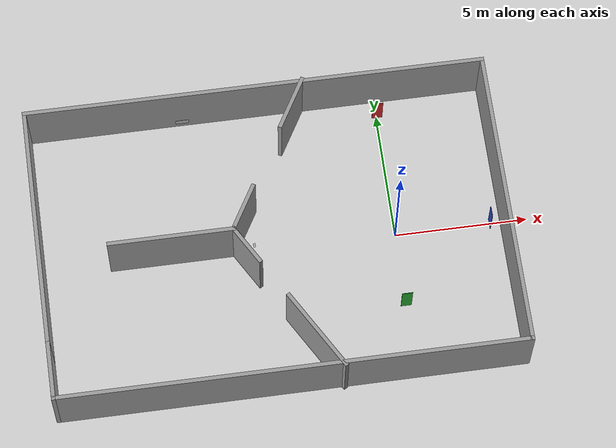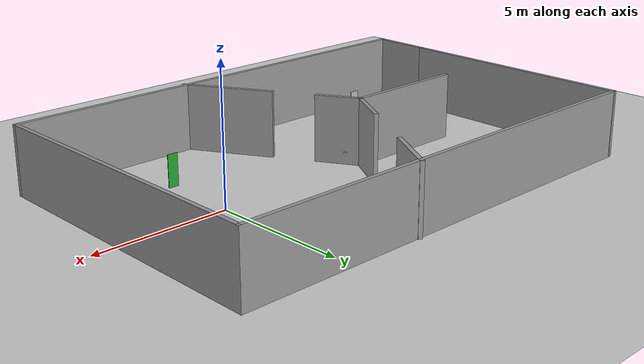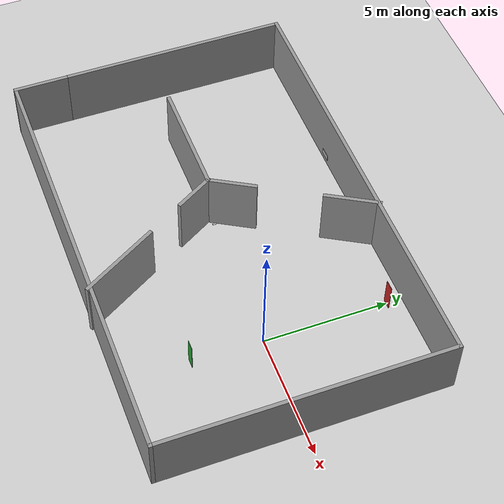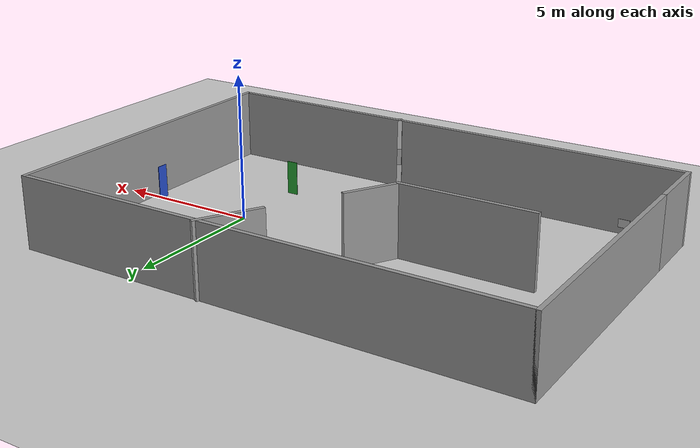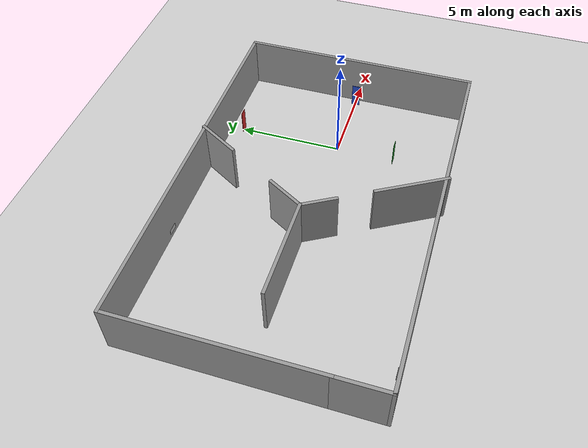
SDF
<sdf version="1.6">
 <world name="default">
  <light name="sun" type="directional">
   <pose>0 0 10 0 -0 0</pose>
   <diffuse>0.8 0.8 0.8 1</diffuse>
   <specular>0.2 0.2 0.2 1</specular>
   <attenuation>
    <range>1000</range>
    <constant>0.9</constant>
    <linear>0.01</linear>
    <quadratic>0.001</quadratic>
   </attenuation>
   <direction>-0.5 0.1 -0.9</direction>
  </light>
  <model name="ground_plane">
   <static>1</static>
   <link name="link">
    <collision name="collision">
     <geometry><plane><normal>0 0 1</normal><size>100 100</size></plane></geometry>
     <surface>
      <contact><collide_bitmask>65535</collide_bitmask></contact>
      <friction><ode><mu>100</mu><mu2>50</mu2></ode></friction>
     </surface>
    </collision>
    <visual name="visual">
     <cast_shadows>0</cast_shadows>
     <geometry><plane><normal>0 0 1</normal><size>100 100</size></plane></geometry>
     <material>
      <script><uri>file://media/materials/scripts/gazebo.material</uri><name>Gazebo/Grey</name></script>
     </material>
    </visual>
   </link>
  </model>
  <gravity>0 0 -9.8</gravity>
  <magnetic_field>6e-06 2.3e-05 -4.2e-05</magnetic_field>
  <atmosphere type="adiabatic"/>
  <physics name="default_physics" default="0" type="ode">
   <max_step_size>0.001</max_step_size>
   <real_time_factor>1</real_time_factor>
   <real_time_update_rate>1000</real_time_update_rate>
  </physics>
  <scene><ambient>0.4 0.4 0.4 1</ambient><background>0.7 0.7 0.7 1</background><shadows>1</shadows></scene>
  <audio><device>default</device></audio>
  <spherical_coordinates>
   <surface_model>EARTH_WGS84</surface_model>
   <latitude_deg>0</latitude_deg>
   <longitude_deg>0</longitude_deg>
   <elevation>0</elevation>
   <heading_deg>0</heading_deg>
  </spherical_coordinates>
  <model name="red_box">
   <static>1</static>
   <link name="box">
    <pose>0 0 0.6 0 -0 0</pose>
    <collision name="collision"><geometry><box><size>0.4 0.02 1.2</size></box></geometry></collision>
    <visual name="visual">
     <geometry><box><size>0.4 0.02 1.2</size></box></geometry>
     <material>
      <script>
       <uri>model://red_box/materials/scripts</uri>
       <uri>model://red_box/materials/textures</uri>
       <name>red_box</name>
      </script>
     </material>
    </visual>
   </link>
   <pose>0.026597 4.98383 0 0 -0 0</pose>
  </model>
  <model name="green_box">
   <static>1</static>
   <link name="box">
    <pose>0 0 0.6 0 -0 0</pose>
    <collision name="collision"><geometry><box><size>0.4 0.02 1.2</size></box></geometry></collision>
    <visual name="visual">
     <geometry><box><size>0.4 0.02 1.2</size></box></geometry>
     <material>
      <script>
       <uri>model://green_box/materials/scripts</uri>
       <uri>model://green_box/materials/textures</uri>
       <name>green_box</name>
      </script>
     </material>
    </visual>
   </link>
   <pose>-0.024716 -2.84125 0 0 -0 0</pose>
  </model>
  <model name="blue_box">
   <static>1</static>
   <link name="box">
    <pose>0 0 0.6 0 -0 0</pose>
    <collision name="collision"><geometry><box><size>0.4 0.02 1.2</size></box></geometry></collision>
    <visual name="visual">
     <geometry><box><size>0.4 0.02 1.2</size></box></geometry>
     <material>
      <script>
       <uri>model://blue_box/materials/scripts</uri>
       <uri>model://blue_box/materials/textures</uri>
       <name>blue_box</name>
      </script>
     </material>
    </visual>
   </link>
   <pose>3.58257 -0.010502 0.022909 0 0 -1.5692</pose>
  </model>
  <light name="user_point_light_0" type="point">
   <pose>-7.41609 3.7875 1 0 -0 0</pose>
   <diffuse>0.5 0.5 0.5 1</diffuse>
   <specular>0.1 0.1 0.1 1</specular>
   <attenuation>
    <range>20</range>
    <constant>0.5</constant>
    <linear>0.01</linear>
    <quadratic>0.001</quadratic>
   </attenuation>
   <cast_shadows>0</cast_shadows>
   <direction>0 0 -1</direction>
  </light>
  <light name="user_point_light_1" type="point">
   <pose>-3.49179 0.517026 1 0 -0 0</pose>
   <diffuse>0.5 0.5 0.5 1</diffuse>
   <specular>0.1 0.1 0.1 1</specular>
   <attenuation>
    <range>20</range>
    <constant>0.5</constant>
    <linear>0.01</linear>
    <quadratic>0.001</quadratic>
   </attenuation>
   <cast_shadows>0</cast_shadows>
   <direction>0 0 -1</direction>
  </light>
  <light name="user_point_light_2" type="point">
   <pose>-11.4258 3.96639 1 0 -0 0</pose>
   <diffuse>0.5 0.5 0.5 1</diffuse>
   <specular>0.1 0.1 0.1 1</specular>
   <attenuation>
    <range>20</range>
    <constant>0.5</constant>
    <linear>0.01</linear>
    <quadratic>0.001</quadratic>
   </attenuation>
   <cast_shadows>0</cast_shadows>
   <direction>0 0 -1</direction>
  </light>
  <light name="user_point_light_3" type="point">
   <pose>-11.5315 -3.10386 1 0 -0 0</pose>
   <diffuse>0.5 0.5 0.5 1</diffuse>
   <specular>0.1 0.1 0.1 1</specular>
   <attenuation>
    <range>20</range>
    <constant>0.5</constant>
    <linear>0.01</linear>
    <quadratic>0.001</quadratic>
   </attenuation>
   <cast_shadows>0</cast_shadows>
   <direction>0 0 -1</direction>
  </light>
  <light name="user_point_light_4" type="point">
   <pose>-7.67154 -2.94655 1 0 -0 0</pose>
   <diffuse>0.5 0.5 0.5 1</diffuse>
   <specular>0.1 0.1 0.1 1</specular>
   <attenuation>
    <range>20</range>
    <constant>0.5</constant>
    <linear>0.01</linear>
    <quadratic>0.001</quadratic>
   </attenuation>
   <cast_shadows>0</cast_shadows>
   <direction>0 0 -1</direction>
  </light>
  <model name="banana">
   <static>1</static>
   <link name="box">
    <pose>0 0 0.125 0 -0 0</pose>
    <collision name="collision"><geometry><box><size>0.5 0.015 0.25</size></box></geometry></collision>
    <visual name="visual">
     <geometry><box><size>0.5 0.015 0.25</size></box></geometry>
     <material>
      <script>
       <uri>model://banana/materials/scripts</uri>
       <uri>model://banana/materials/textures</uri>
       <name>banana</name>
      </script>
     </material>
    </visual>
   </link>
   <pose>-7.42368 5.59562 0.287893 0 -0 0</pose>
  </model>
  <model name="pizza">
   <static>1</static>
   <link name="box">
    <collision name="collision"><geometry><box><size>0.393256 0.015 0.290728</size></box></geometry></collision>
    <visual name="visual">
     <geometry><box><size>0.393256 0.015 0.290728</size></box></geometry>
     <material>
      <script>
       <uri>model://pizza/materials/scripts</uri>
       <uri>model://pizza/materials/textures</uri>
       <name>pizza</name>
      </script>
     </material>
    </visual>
   </link>
   <pose>-11.4181 -5.509 0.391385 0 -0 0</pose>
  </model>
  <model name="cat_picture">
   <static>1</static>
   <link name="box">
    <collision name="collision"><geometry><box><size>0.15027 0.075 0.004573</size></box></geometry></collision>
    <visual name="visual">
     <geometry><box><size>0.15027 0.075 0.004573</size></box></geometry>
     <material>
      <script>
       <uri>model://cat_picture/materials/scripts</uri>
       <uri>model://cat_picture/materials/textures</uri>
       <name>cat_picture</name>
      </script>
     </material>
    </visual>
   </link>
   <pose>-5.35123 0.029272 0.672643 0 0 -1.56426</pose>
  </model>
  <model name="walls">
   <pose>-4.6184 0.01091 0 0 -0 0</pose>
   <link name="Wall_0">
    <collision name="Wall_0_Collision">
     <geometry><box><size>9.25 0.15 2.5</size></box></geometry>
     <pose>0 0 1.25 0 -0 0</pose>
    </collision>
    <visual name="Wall_0_Visual">
     <pose>0 0 1.25 0 -0 0</pose>
     <geometry><box><size>9.25 0.15 2.5</size></box></geometry>
     <material>
      <script><uri>file://media/materials/scripts/gazebo.material</uri><name>Gazebo/Grey</name></script>
      <ambient>1 1 1 1</ambient>
     </material>
     <meta><layer>0</layer></meta>
    </visual>
    <pose>-8.675 1.14311 0 0 -0 1.5708</pose>
   </link>
   <link name="Wall_1">
    <collision name="Wall_1_Collision">
     <geometry><box><size>17.5 0.15 2.5</size></box></geometry>
     <pose>0 0 1.25 0 -0 0</pose>
    </collision>
    <visual name="Wall_1_Visual">
     <pose>0 0 1.25 0 -0 0</pose>
     <geometry><box><size>17.5 0.15 2.5</size></box></geometry>
     <material>
      <script><uri>file://media/materials/scripts/gazebo.material</uri><name>Gazebo/Grey</name></script>
      <ambient>1 1 1 1</ambient>
     </material>
     <meta><layer>0</layer></meta>
    </visual>
    <pose>-0 5.69311 0 0 -0 0</pose>
   </link>
   <link name="Wall_11">
    <collision name="Wall_11_Collision">
     <geometry><box><size>1.75 0.15 2.5</size></box></geometry>
     <pose>0 0 1.25 0 -0 0</pose>
    </collision>
    <visual name="Wall_11_Visual">
     <pose>0 0 1.25 0 -0 0</pose>
     <geometry><box><size>1.75 0.15 2.5</size></box></geometry>
     <material>
      <script><uri>file://media/materials/scripts/gazebo.material</uri><name>Gazebo/Grey</name></script>
      <ambient>1 1 1 1</ambient>
     </material>
     <meta><layer>0</layer></meta>
    </visual>
    <pose>-1.08819 -0.668295 0 0 -0 -1.0472</pose>
   </link>
   <link name="Wall_17">
    <collision name="Wall_17_Collision">
     <geometry><box><size>3.5 0.15 2.5</size></box></geometry>
     <pose>0 0 1.25 0 -0 0</pose>
    </collision>
    <visual name="Wall_17_Visual">
     <pose>0 0 1.25 0 -0 0</pose>
     <geometry><box><size>3.5 0.15 2.5</size></box></geometry>
     <material>
      <script><uri>file://media/materials/scripts/gazebo.material</uri><name>Gazebo/Grey</name></script>
      <ambient>1 1 1 1</ambient>
     </material>
     <meta><layer>0</layer></meta>
    </visual>
    <pose>1.0238 -4.30255 0 0 -0 -1.0472</pose>
   </link>
   <link name="Wall_2">
    <collision name="Wall_2_Collision">
     <geometry><box><size>11.5 0.15 2.5</size></box></geometry>
     <pose>0 0 1.25 0 -0 0</pose>
    </collision>
    <visual name="Wall_2_Visual">
     <pose>0 0 1.25 0 -0 0</pose>
     <geometry><box><size>11.5 0.15 2.5</size></box></geometry>
     <material>
      <script><uri>file://media/materials/scripts/gazebo.material</uri><name>Gazebo/Grey</name></script>
      <ambient>1 1 1 1</ambient>
     </material>
     <meta><layer>0</layer></meta>
    </visual>
    <pose>8.675 0.018105 0 0 -0 -1.5708</pose>
   </link>
   <link name="Wall_3">
    <collision name="Wall_3_Collision">
     <geometry><box><size>17.5 0.15 2.5</size></box></geometry>
     <pose>0 0 1.25 0 -0 0</pose>
    </collision>
    <visual name="Wall_3_Visual">
     <pose>0 0 1.25 0 -0 0</pose>
     <geometry><box><size>17.5 0.15 2.5</size></box></geometry>
     <material>
      <script><uri>file://media/materials/scripts/gazebo.material</uri><name>Gazebo/Grey</name></script>
      <ambient>1 1 1 1</ambient>
     </material>
     <meta><layer>0</layer></meta>
    </visual>
    <pose>-0 -5.65689 0 0 -0 3.14159</pose>
   </link>
   <link name="Wall_4">
    <collision name="Wall_4_Collision">
     <geometry><box><size>2.4 0.15 2.5</size></box></geometry>
     <pose>0 0 1.25 0 -0 0</pose>
    </collision>
    <visual name="Wall_4_Visual">
     <pose>0 0 1.25 0 -0 0</pose>
     <geometry><box><size>2.4 0.15 2.5</size></box></geometry>
     <material>
      <script><uri>file://media/materials/scripts/gazebo.material</uri><name>Gazebo/Grey</name></script>
      <ambient>1 1 1 1</ambient>
     </material>
     <meta><layer>0</layer></meta>
    </visual>
    <pose>-8.675 -4.53189 0 0 -0 1.5708</pose>
   </link>
   <link name="Wall_6">
    <collision name="Wall_6_Collision">
     <geometry><box><size>2.25 0.15 2.5</size></box></geometry>
     <pose>0 0 1.25 0 -0 0</pose>
    </collision>
    <visual name="Wall_6_Visual">
     <pose>0 0 1.25 0 -0 0</pose>
     <geometry><box><size>2.25 0.15 2.5</size></box></geometry>
     <material>
      <script><uri>file://media/materials/scripts/gazebo.material</uri><name>Gazebo/Grey</name></script>
      <ambient>1 1 1 1</ambient>
     </material>
     <meta><layer>0</layer></meta>
    </visual>
    <pose>1.29869 4.84382 0 0 -0 -2.0944</pose>
   </link>
   <link name="Wall_8">
    <collision name="Wall_8_Collision">
     <geometry><box><size>2 0.15 2.5</size></box></geometry>
     <pose>0 0 1.25 0 -0 0</pose>
    </collision>
    <visual name="Wall_8_Visual">
     <pose>0 0 1.25 0 -0 0</pose>
     <geometry><box><size>2 0.15 2.5</size></box></geometry>
     <material>
      <script><uri>file://media/materials/scripts/gazebo.material</uri><name>Gazebo/Grey</name></script>
      <ambient>1 1 1 1</ambient>
     </material>
     <meta><layer>0</layer></meta>
    </visual>
    <pose>-1.02569 0.825599 0 0 -0 -2.0944</pose>
   </link>
   <link name="Wall_9">
    <collision name="Wall_9_Collision">
     <geometry><box><size>4.75 0.15 2.5</size></box></geometry>
     <pose>0 0 1.25 0 -0 0</pose>
    </collision>
    <visual name="Wall_9_Visual">
     <pose>0 0 1.25 0 -0 0</pose>
     <geometry><box><size>4.75 0.15 2.5</size></box></geometry>
     <material>
      <script><uri>file://media/materials/scripts/gazebo.material</uri><name>Gazebo/Grey</name></script>
      <ambient>1 1 1 1</ambient>
     </material>
     <meta><layer>0</layer></meta>
    </visual>
    <pose>-3.78819 0.024525 0 0 -0 3.14159</pose>
   </link>
   <static>1</static>
  </model>
 </world>
</sdf>
